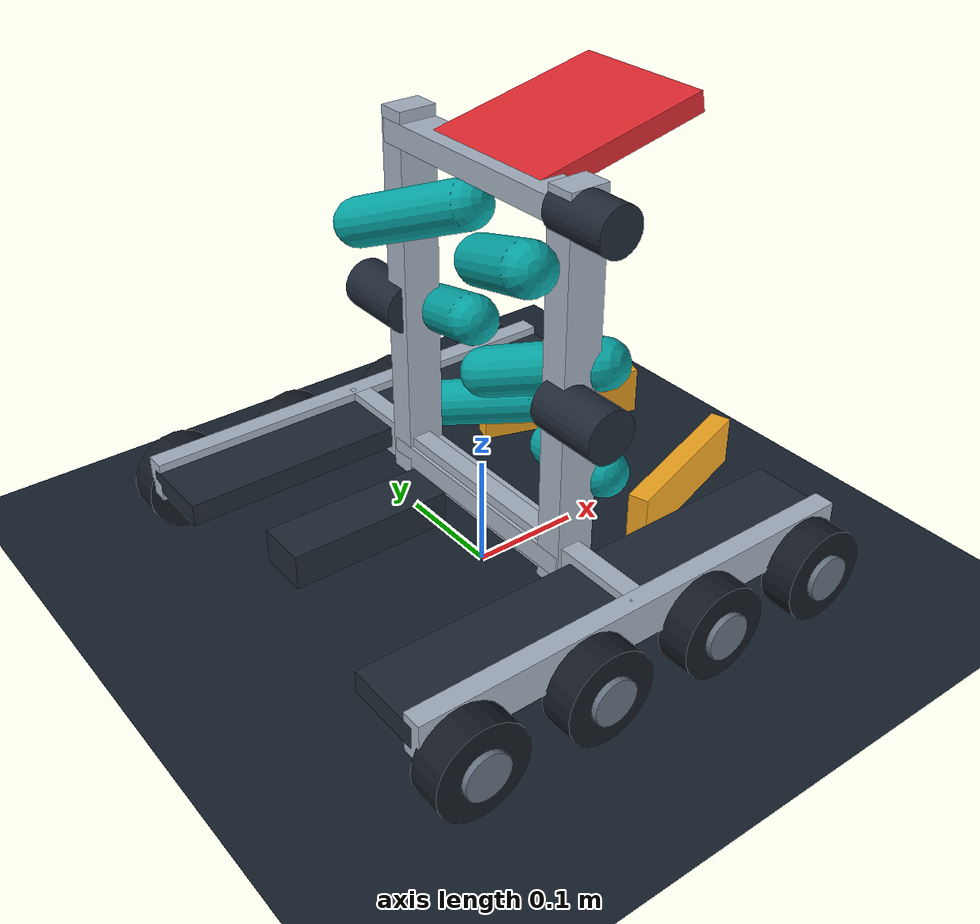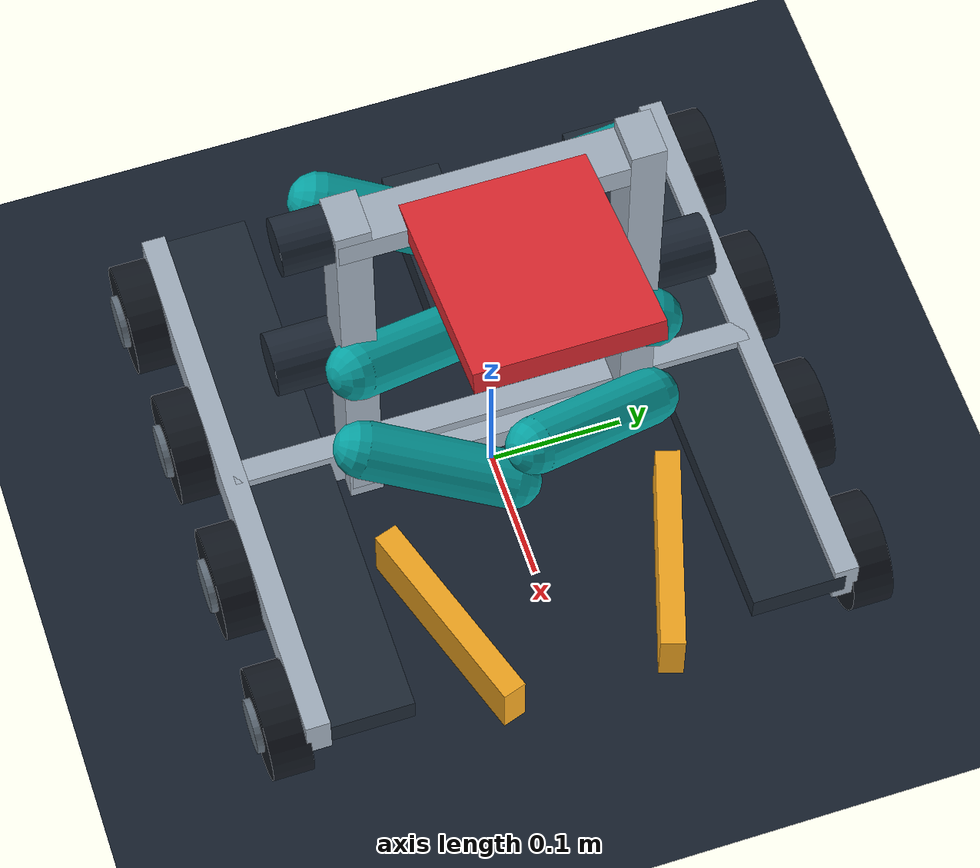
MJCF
<mujoco model="Skew-Roller Spiral Tower"><compiler angle="degree" /><visual><global offwidth="800" offheight="600" /><quality offsamples="0" /><headlight ambient=".45 .45 .45" /></visual><worldbody><light pos="0 -1 3" castshadow="false" /><geom type="plane" size="2 2 .1" rgba=".09 .13 .18 1" /><geom type="box" pos="0 -0.195 0.066275" size="0.21 0.009 0.018" euler="0 0 0" rgba=".65 .7 .76 1" contype="0" conaffinity="0" /><geom type="box" pos="0 0.195 0.066275" size="0.21 0.009 0.018" euler="0 0 0" rgba=".65 .7 .76 1" contype="0" conaffinity="0" /><geom type="box" pos="0 0 0.066275" size="0.009 0.195 0.018" euler="0 0 0" rgba=".65 .7 .76 1" contype="0" conaffinity="0" /><geom type="box" pos="0 -0.16 0.066275" size="0.21 0.035 0.01" euler="0 0 0" rgba=".12 .16 .21 1" contype="0" conaffinity="0" /><geom type="box" pos="0 0.16 0.066275" size="0.21 0.035 0.01" euler="0 0 0" rgba=".12 .16 .21 1" contype="0" conaffinity="0" /><geom type="cylinder" pos="-0.175 -0.216 0.041275" size="0.041275 0.015" euler="90 0 0" rgba=".08 .1 .13 1" contype="0" conaffinity="0" /><geom type="cylinder" pos="-0.175 -0.233 0.041275" size="0.019812 0.003" euler="90 0 0" rgba=".4 .45 .5 1" contype="0" conaffinity="0" /><geom type="cylinder" pos="-0.058333333333333334 -0.216 0.041275" size="0.041275 0.015" euler="90 0 0" rgba=".08 .1 .13 1" contype="0" conaffinity="0" /><geom type="cylinder" pos="-0.058333333333333334 -0.233 0.041275" size="0.019812 0.003" euler="90 0 0" rgba=".4 .45 .5 1" contype="0" conaffinity="0" /><geom type="cylinder" pos="0.05833333333333332 -0.216 0.041275" size="0.041275 0.015" euler="90 0 0" rgba=".08 .1 .13 1" contype="0" conaffinity="0" /><geom type="cylinder" pos="0.05833333333333332 -0.233 0.041275" size="0.019812 0.003" euler="90 0 0" rgba=".4 .45 .5 1" contype="0" conaffinity="0" /><geom type="cylinder" pos="0.175 -0.216 0.041275" size="0.041275 0.015" euler="90 0 0" rgba=".08 .1 .13 1" contype="0" conaffinity="0" /><geom type="cylinder" pos="0.175 -0.233 0.041275" size="0.019812 0.003" euler="90 0 0" rgba=".4 .45 .5 1" contype="0" conaffinity="0" /><geom type="cylinder" pos="-0.175 0.216 0.041275" size="0.041275 0.015" euler="90 0 0" rgba=".08 .1 .13 1" contype="0" conaffinity="0" /><geom type="cylinder" pos="-0.175 0.233 0.041275" size="0.019812 0.003" euler="90 0 0" rgba=".4 .45 .5 1" contype="0" conaffinity="0" /><geom type="cylinder" pos="-0.058333333333333334 0.216 0.041275" size="0.041275 0.015" euler="90 0 0" rgba=".08 .1 .13 1" contype="0" conaffinity="0" /><geom type="cylinder" pos="-0.058333333333333334 0.233 0.041275" size="0.019812 0.003" euler="90 0 0" rgba=".4 .45 .5 1" contype="0" conaffinity="0" /><geom type="cylinder" pos="0.05833333333333332 0.216 0.041275" size="0.041275 0.015" euler="90 0 0" rgba=".08 .1 .13 1" contype="0" conaffinity="0" /><geom type="cylinder" pos="0.05833333333333332 0.233 0.041275" size="0.019812 0.003" euler="90 0 0" rgba=".4 .45 .5 1" contype="0" conaffinity="0" /><geom type="cylinder" pos="0.175 0.216 0.041275" size="0.041275 0.015" euler="90 0 0" rgba=".08 .1 .13 1" contype="0" conaffinity="0" /><geom type="cylinder" pos="0.175 0.233 0.041275" size="0.019812 0.003" euler="90 0 0" rgba=".4 .45 .5 1" contype="0" conaffinity="0" /><geom type="box" pos="-0.125 0.0 0.091275" size="0.07 0.022 0.015" euler="0 0 0" rgba=".12 .16 .21 1" contype="0" conaffinity="0" /><geom type="box" pos="0.005 0.102 0.215" size="0.0175 0.0125 0.17" euler="0.0 0.0 0.0" rgba=".65 .7 .76 1" contype="0" conaffinity="0" /><geom type="box" pos="0.005 -0.102 0.215" size="0.0175 0.0125 0.17" euler="0.0 0.0 0.0" rgba=".65 .7 .76 1" contype="0" conaffinity="0" /><geom type="box" pos="0.005 0.0 0.065" size="0.0175 0.1125 0.01" euler="0.0 0.0 0.0" rgba=".65 .7 .76 1" contype="0" conaffinity="0" /><geom type="box" pos="0.005 0.0 0.365" size="0.0175 0.1125 0.01" euler="0.0 0.0 0.0" rgba=".65 .7 .76 1" contype="0" conaffinity="0" /><geom type="capsule" pos="0.055 0.058 0.115" size="0.021 0.056499999999999995" euler="68.0 18.0 0.0" rgba=".03 .65 .65 1" contype="0" conaffinity="0" /><geom type="capsule" pos="0.055 -0.058 0.115" size="0.021 0.056499999999999995" euler="68.0 -18.0 0.0" rgba=".03 .65 .65 1" contype="0" conaffinity="0" /><geom type="capsule" pos="0.015 0.058 0.215" size="0.021 0.056499999999999995" euler="68.0 -18.0 0.0" rgba=".03 .65 .65 1" contype="0" conaffinity="0" /><geom type="capsule" pos="0.015 -0.058 0.215" size="0.021 0.056499999999999995" euler="68.0 18.0 0.0" rgba=".03 .65 .65 1" contype="0" conaffinity="0" /><geom type="capsule" pos="-0.025 0.058 0.315" size="0.021 0.056499999999999995" euler="68.0 18.0 0.0" rgba=".03 .65 .65 1" contype="0" conaffinity="0" /><geom type="capsule" pos="-0.025 -0.058 0.315" size="0.021 0.056499999999999995" euler="68.0 -18.0 0.0" rgba=".03 .65 .65 1" contype="0" conaffinity="0" /><geom type="box" pos="0.155 0.082 0.067" size="0.0775 0.009 0.0225" euler="0.0 0.0 -18.0" rgba=".96 .66 .13 1" contype="0" conaffinity="0" /><geom type="box" pos="0.155 -0.082 0.067" size="0.0775 0.009 0.0225" euler="0.0 0.0 18.0" rgba=".96 .66 .13 1" contype="0" conaffinity="0" /><geom type="box" pos="0.078 0.0 0.382" size="0.085 0.065 0.009" euler="0.0 -12.0 0.0" rgba=".87 .16 .19 1" contype="0" conaffinity="0" /><geom type="cylinder" pos="-0.005 0.127 0.21" size="0.0225 0.0325" euler="90.0 0.0 0.0" rgba=".12 .16 .21 1" contype="0" conaffinity="0" /><geom type="cylinder" pos="-0.005 -0.127 0.21" size="0.0225 0.0325" euler="90.0 0.0 0.0" rgba=".12 .16 .21 1" contype="0" conaffinity="0" /><geom type="cylinder" pos="0.002 -0.12 0.365" size="0.02 0.03" euler="90.0 0.0 0.0" rgba=".12 .16 .21 1" contype="0" conaffinity="0" /></worldbody></mujoco>
